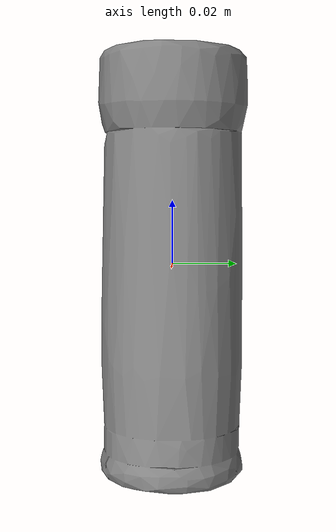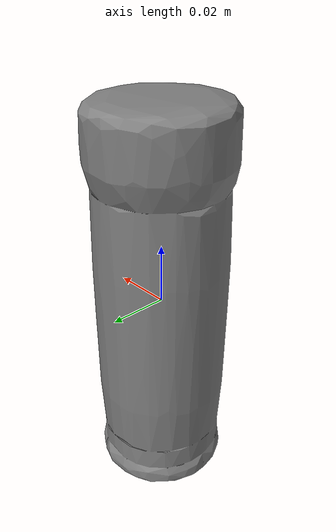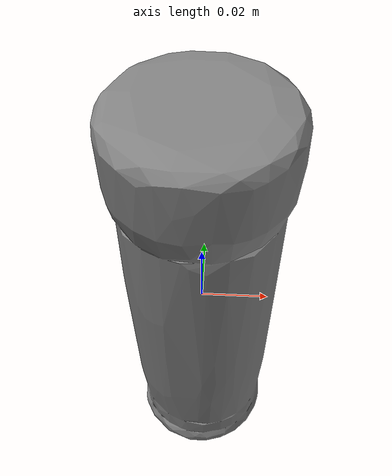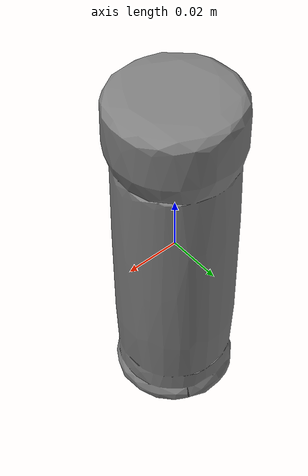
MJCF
<mujoco model="salt_shaker_Wilton_Pearlized_Sugar_Sprinkles_525_oz_Gold_M">
  <default>
    <default class="visual">
      <geom group="2" type="mesh" contype="0" conaffinity="0" />
    </default>
    <default class="collision">
      <geom group="3" type="mesh" />
    </default>
  </default>
  <asset>
    <mesh file="salt_shaker_Wilton_Pearlized_Sugar_Sprinkles_525_oz_Gold_M.stl" />
    <mesh file="salt_shaker_Wilton_Pearlized_Sugar_Sprinkles_525_oz_Gold_M_collision_0.stl" />
    <mesh file="salt_shaker_Wilton_Pearlized_Sugar_Sprinkles_525_oz_Gold_M_collision_1.stl" />
    <mesh file="salt_shaker_Wilton_Pearlized_Sugar_Sprinkles_525_oz_Gold_M_collision_2.stl" />
    <mesh file="salt_shaker_Wilton_Pearlized_Sugar_Sprinkles_525_oz_Gold_M_collision_3.stl" />
    <mesh file="salt_shaker_Wilton_Pearlized_Sugar_Sprinkles_525_oz_Gold_M_collision_4.stl" />
    <mesh file="salt_shaker_Wilton_Pearlized_Sugar_Sprinkles_525_oz_Gold_M_collision_5.stl" />
    <mesh file="salt_shaker_Wilton_Pearlized_Sugar_Sprinkles_525_oz_Gold_M_collision_6.stl" />
    <mesh file="salt_shaker_Wilton_Pearlized_Sugar_Sprinkles_525_oz_Gold_M_collision_7.stl" />
    <mesh file="salt_shaker_Wilton_Pearlized_Sugar_Sprinkles_525_oz_Gold_M_collision_8.stl" />
    <mesh file="salt_shaker_Wilton_Pearlized_Sugar_Sprinkles_525_oz_Gold_M_collision_9.stl" />
    <mesh file="salt_shaker_Wilton_Pearlized_Sugar_Sprinkles_525_oz_Gold_M_collision_10.stl" />
    <mesh file="salt_shaker_Wilton_Pearlized_Sugar_Sprinkles_525_oz_Gold_M_collision_11.stl" />
    <mesh file="salt_shaker_Wilton_Pearlized_Sugar_Sprinkles_525_oz_Gold_M_collision_12.stl" />
    <mesh file="salt_shaker_Wilton_Pearlized_Sugar_Sprinkles_525_oz_Gold_M_collision_13.stl" />
    <mesh file="salt_shaker_Wilton_Pearlized_Sugar_Sprinkles_525_oz_Gold_M_collision_14.stl" />
    <mesh file="salt_shaker_Wilton_Pearlized_Sugar_Sprinkles_525_oz_Gold_M_collision_15.stl" />
  </asset>
  <worldbody>
    <body name="salt_shaker_Wilton_Pearlized_Sugar_Sprinkles_525_oz_Gold_M">
      <geom mesh="salt_shaker_Wilton_Pearlized_Sugar_Sprinkles_525_oz_Gold_M" class="visual" />
      <geom mesh="salt_shaker_Wilton_Pearlized_Sugar_Sprinkles_525_oz_Gold_M_collision_0" class="collision" />
      <geom mesh="salt_shaker_Wilton_Pearlized_Sugar_Sprinkles_525_oz_Gold_M_collision_1" class="collision" />
      <geom mesh="salt_shaker_Wilton_Pearlized_Sugar_Sprinkles_525_oz_Gold_M_collision_2" class="collision" />
      <geom mesh="salt_shaker_Wilton_Pearlized_Sugar_Sprinkles_525_oz_Gold_M_collision_3" class="collision" />
      <geom mesh="salt_shaker_Wilton_Pearlized_Sugar_Sprinkles_525_oz_Gold_M_collision_4" class="collision" />
      <geom mesh="salt_shaker_Wilton_Pearlized_Sugar_Sprinkles_525_oz_Gold_M_collision_5" class="collision" />
      <geom mesh="salt_shaker_Wilton_Pearlized_Sugar_Sprinkles_525_oz_Gold_M_collision_6" class="collision" />
      <geom mesh="salt_shaker_Wilton_Pearlized_Sugar_Sprinkles_525_oz_Gold_M_collision_7" class="collision" />
      <geom mesh="salt_shaker_Wilton_Pearlized_Sugar_Sprinkles_525_oz_Gold_M_collision_8" class="collision" />
      <geom mesh="salt_shaker_Wilton_Pearlized_Sugar_Sprinkles_525_oz_Gold_M_collision_9" class="collision" />
      <geom mesh="salt_shaker_Wilton_Pearlized_Sugar_Sprinkles_525_oz_Gold_M_collision_10" class="collision" />
      <geom mesh="salt_shaker_Wilton_Pearlized_Sugar_Sprinkles_525_oz_Gold_M_collision_11" class="collision" />
      <geom mesh="salt_shaker_Wilton_Pearlized_Sugar_Sprinkles_525_oz_Gold_M_collision_12" class="collision" />
      <geom mesh="salt_shaker_Wilton_Pearlized_Sugar_Sprinkles_525_oz_Gold_M_collision_13" class="collision" />
      <geom mesh="salt_shaker_Wilton_Pearlized_Sugar_Sprinkles_525_oz_Gold_M_collision_14" class="collision" />
      <geom mesh="salt_shaker_Wilton_Pearlized_Sugar_Sprinkles_525_oz_Gold_M_collision_15" class="collision" />
    </body>
  </worldbody>
</mujoco>
